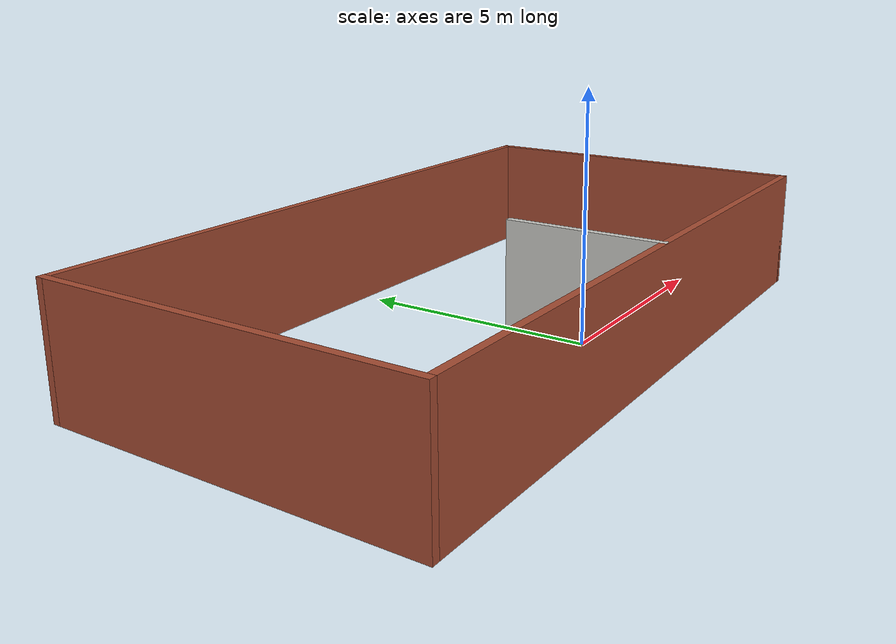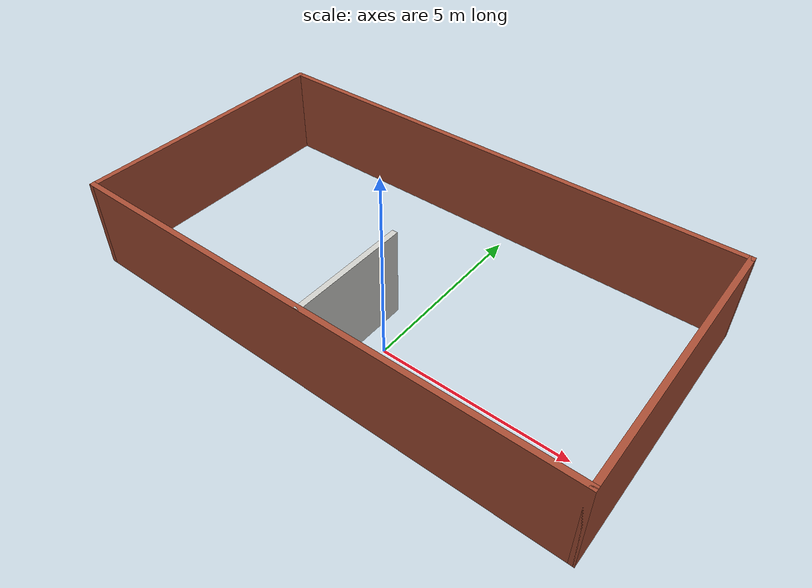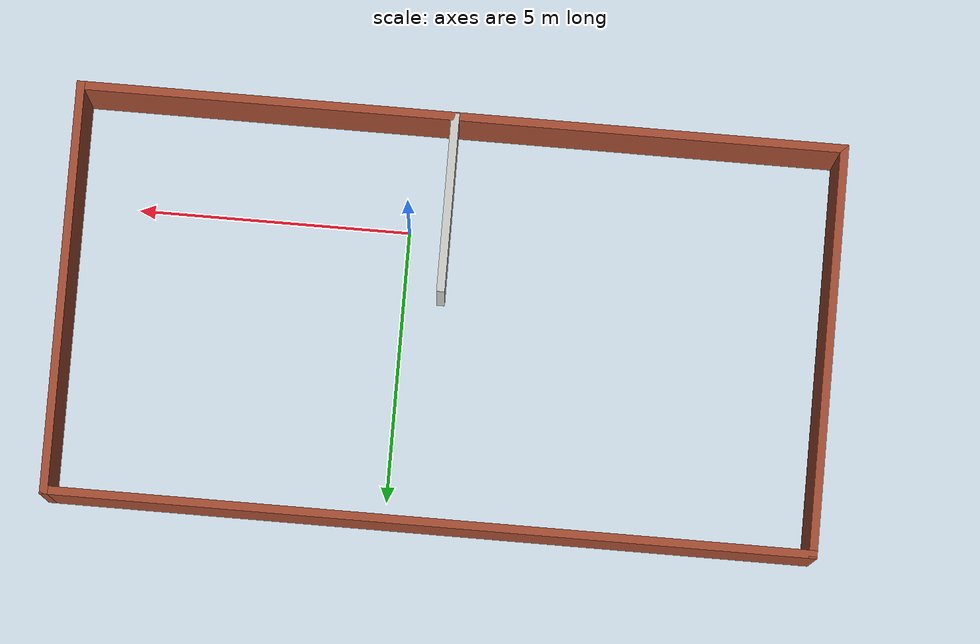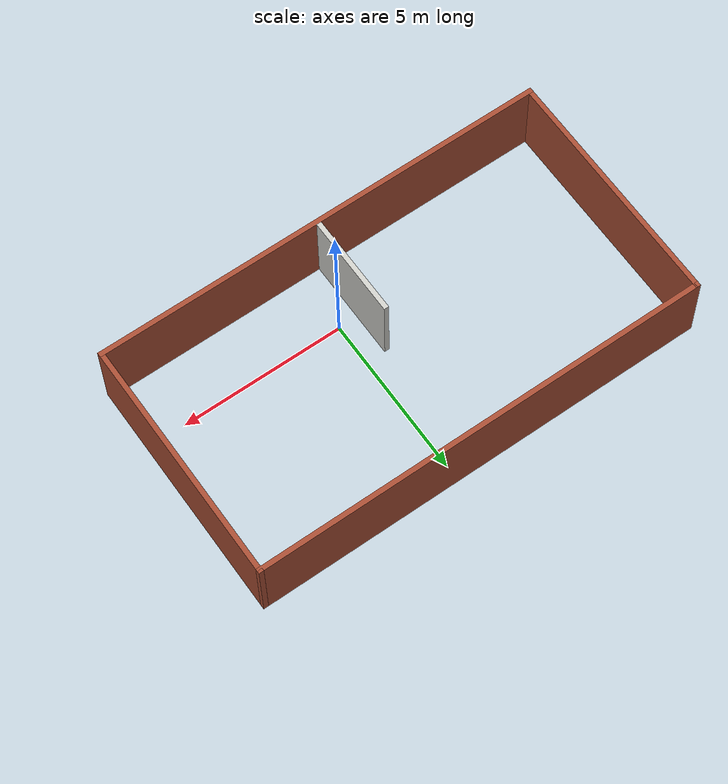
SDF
<?xml version='1.0'?>
<sdf version='1.6'>
  <model name='model_pk'>
    <pose frame=''>-0.812438 1.7703 0 0 -0 0</pose>
    <link name='Wall_12'>
      <collision name='Wall_12_Collision'>
        <geometry>
          <box>
            <size>3.25 0.15 2.5</size>
          </box>
        </geometry>
        <pose frame=''>0 0 1.25 0 -0 0</pose>
      </collision>
      <visual name='Wall_12_Visual'>
        <pose frame=''>0 0 1.25 0 -0 0</pose>
        <geometry>
          <box>
            <size>3.25 0.15 2.5</size>
          </box>
        </geometry>
        <material>
          <script>
            <uri>file://media/materials/scripts/gazebo.material</uri>
            <name>Gazebo/CeilingTiled</name>
          </script>
          <ambient>1 1 1 1</ambient>
        </material>
        <meta>
          <layer>0</layer>
        </meta>
      </visual>
      <pose frame=''>0.129835 -2.1074 0 0 -0 1.5708</pose>
    </link>
    <link name='Wall_5'>
      <collision name='Wall_5_Collision'>
        <geometry>
          <box>
            <size>7.5 0.15 2.5</size>
          </box>
        </geometry>
        <pose frame=''>0 0 1.25 0 -0 0</pose>
      </collision>
      <visual name='Wall_5_Visual'>
        <pose frame=''>0 0 1.25 0 -0 0</pose>
        <geometry>
          <box>
            <size>7.5 0.15 2.5</size>
          </box>
        </geometry>
        <material>
          <script>
            <uri>file://media/materials/scripts/gazebo.material</uri>
            <name>Gazebo/Bricks</name>
          </script>
          <ambient>1 1 1 1</ambient>
        </material>
        <meta>
          <layer>0</layer>
        </meta>
      </visual>
      <pose frame=''>-6.925 0 0 0 0 -1.5708</pose>
    </link>
    <link name='Wall_6'>
      <collision name='Wall_6_Collision'>
        <geometry>
          <box>
            <size>14 0.15 2.5</size>
          </box>
        </geometry>
        <pose frame=''>0 0 1.25 0 -0 0</pose>
      </collision>
      <visual name='Wall_6_Visual'>
        <pose frame=''>0 0 1.25 0 -0 0</pose>
        <geometry>
          <box>
            <size>14 0.15 2.5</size>
          </box>
        </geometry>
        <material>
          <script>
            <uri>file://media/materials/scripts/gazebo.material</uri>
            <name>Gazebo/Bricks</name>
          </script>
          <ambient>0.333333 1 0 1</ambient>
        </material>
        <meta>
          <layer>0</layer>
        </meta>
      </visual>
      <pose frame=''>0 -3.675 0 0 -0 0</pose>
    </link>
    <link name='Wall_7'>
      <collision name='Wall_7_Collision'>
        <geometry>
          <box>
            <size>7.5 0.15 2.5</size>
          </box>
        </geometry>
        <pose frame=''>0 0 1.25 0 -0 0</pose>
      </collision>
      <visual name='Wall_7_Visual'>
        <pose frame=''>0 0 1.25 0 -0 0</pose>
        <geometry>
          <box>
            <size>7.5 0.15 2.5</size>
          </box>
        </geometry>
        <material>
          <script>
            <uri>file://media/materials/scripts/gazebo.material</uri>
            <name>Gazebo/Bricks</name>
          </script>
          <ambient>0 0.333333 1 1</ambient>
        </material>
        <meta>
          <layer>0</layer>
        </meta>
      </visual>
      <pose frame=''>6.925 0 0 0 -0 1.5708</pose>
    </link>
    <link name='Wall_8'>
      <collision name='Wall_8_Collision'>
        <geometry>
          <box>
            <size>14 0.15 2.5</size>
          </box>
        </geometry>
        <pose frame=''>0 0 1.25 0 -0 0</pose>
      </collision>
      <visual name='Wall_8_Visual'>
        <pose frame=''>0 0 1.25 0 -0 0</pose>
        <geometry>
          <box>
            <size>14 0.15 2.5</size>
          </box>
        </geometry>
        <material>
          <script>
            <uri>file://media/materials/scripts/gazebo.material</uri>
            <name>Gazebo/Bricks</name>
          </script>
          <ambient>0.666667 0 0 1</ambient>
        </material>
        <meta>
          <layer>0</layer>
        </meta>
      </visual>
      <pose frame=''>0 3.675 0 0 -0 3.14159</pose>
    </link>
    <static>1</static>
  </model>
</sdf>
